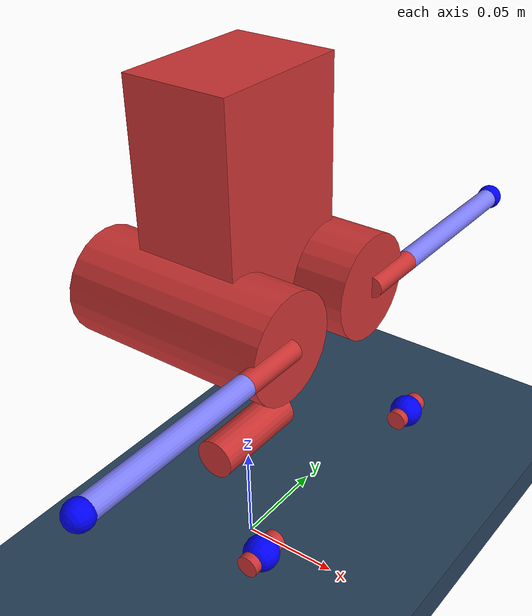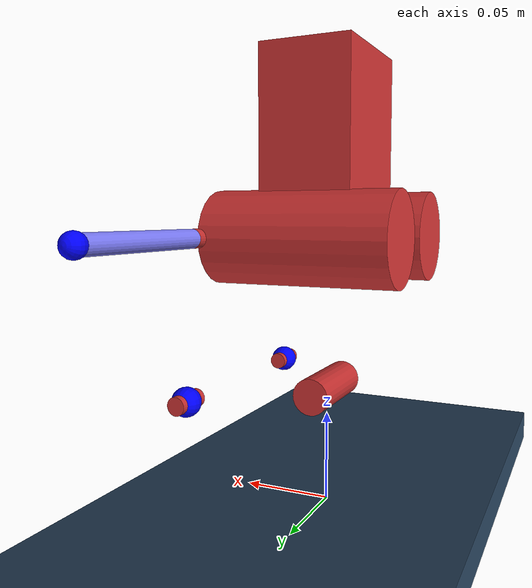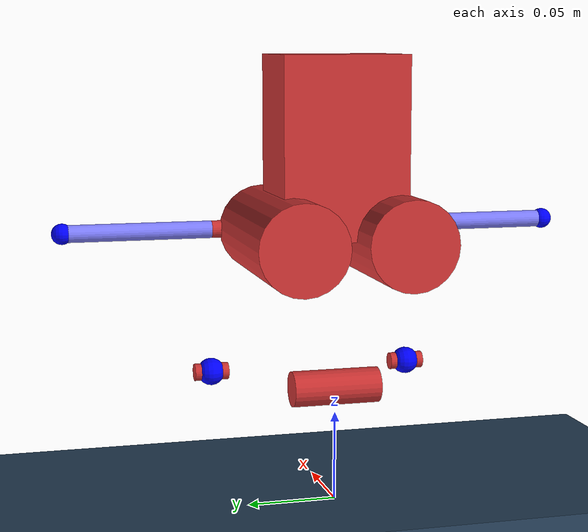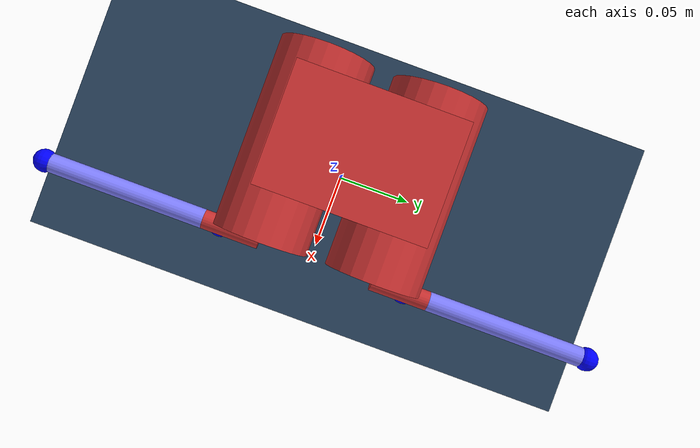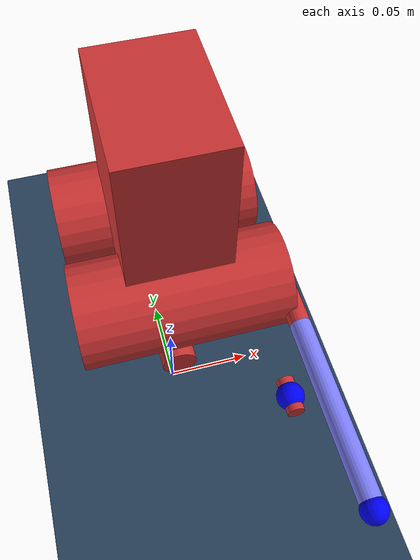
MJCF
<mujoco model="torso_mechanism">

    <compiler meshdir="mesh" />
    <option gravity="0 0 -9.81" timestep="0.0001" integrator="RK4"/>

    <default>
        <!-- stiffer contacts -->
        <geom solref="0.99 1.5" solimp="0.99 0.99 0.99 2 3"/>
        <mesh scale="0.001 0.001 0.001" />
    </default>

    <visual>
        <map force="1" zfar="3"/>
        <rgba haze="0 0 0 1"/>
        <global elevation="-30" azimuth="135"/>
    </visual>

    <asset>
        <texture type="skybox" builtin="gradient" rgb1=".3 .5 .7" rgb2="0 0 0" width="32" height="512"/>
        <texture name="body" type="cube" builtin="flat" mark="cross" width="128" height="128" rgb1="0.8 0.6 0.4" rgb2="0.8 0.6 0.4" markrgb="1 1 1"/>
        <material name="body" texture="body" texuniform="true" rgba="0.8 0.6 .4 1"/>
        <texture name="grid" type="2d" builtin="checker" width="512" height="512" rgb1=".1 .2 .3" rgb2=".2 .3 .4"/>
        <material name="grid" texture="grid" texrepeat="20 20" texuniform="true" reflectance=".5"/>
    </asset>

    <worldbody>
        <geom name="floor" type="box" size="0.5 0.5 0.01" pos="0 0 0" material="grid" condim="3"/>
        <light name="spotlight" diffuse="0.7 0.7 0.7" specular="1 1 1" pos="0 0 1" cutoff="3" castshadow="false"/>
        <light name="top" pos="0 0 2" mode="trackcom" castshadow="false"/>
        <light name="front" pos="0.1 0 0.5" mode="trackcom" />

        <body name="base0" pos="0 0 0">

            <!-- base1 -->
            <body name="base1" euler="90 0 0" pos="0.055 -0.06 0.065">
                <inertial pos="0 0 0" mass="0.001" diaginertia="0.1 0.1 0.1"/>
                <geom name="base1_geom" type="cylinder" size="0.005 0.01" rgba="0.8 0.2 0.2 1"/>
                <joint name="s_spider1" type="hinge" pos="0 0 0" axis="0 0 1" damping="0.2"/>
                <!-- dummy1 -->
                <body name="dummy1" euler="0 0 0" pos="0 0 0">
                    <joint name="s_spider1_1" type="hinge" pos="0 0 0" axis="1 0 0" damping="0.2"/>
                    <geom name="dummy1" type="sphere" size="0.001" rgba="0.8 0.2 0.2 1"/>
                    <inertial pos="0 0 0" mass="0.001" diaginertia="0.1 0.1 0.1"/>
                    <site name="SS1" pos="0 0 0" type="sphere" size="0.008" rgba="0 0 1 1"/>
                </body>
            </body>

            <!-- base2 -->
            <body name="base2" euler="90 0 0" pos="0.055 0.06 0.065">
                <geom name="base2_geom" type="cylinder" size="0.005 0.01" rgba="0.8 0.2 0.2 1"/>
                <joint name="s_spider2" type="hinge" pos="0 0 0" axis="0 0 1" damping="0.2"/>
                <!-- dummy2 -->
                <body name="dummy2" euler="0 0 0" pos="0 0 0">
                    <joint name="s_spider2_1" type="hinge" pos="0 0 0" axis="1 0 0" damping="0.2"/>
                    <geom name="dummy2" type="sphere" size="0.001" rgba="0.8 0.2 0.2 1"/>
                    <inertial pos="0 0 0" mass="0.001" diaginertia="0.1 0.1 0.1"/>
                    <site name="SS2" pos="0 0 0" type="sphere" size="0.008" rgba="0 0 1 1"/>
                </body>
            </body>

            <body name="spider" pos="0 0 0.065" euler="90 0 0">
                <geom type="cylinder" size="0.01 0.025" rgba="0.8 0.2 0.2 1"/>
                <joint name="roll" pos="0 0 0" type="hinge" axis="1 0 0" range="-15 15" damping="0.002"/>

                <body name="torso" pos="0 0.085 0" euler="-90 0 0">
                    <geom type="box" size="0.025 0.035 0.05" pos ="0 0 0.05" rgba="0.8 0.2 0.2 1"/>
                    <joint name="pitch" pos="0 0 -0.085" type="hinge" axis="0 1 0" range="-10 20" damping="0.002"/>

                    <body name="motor18" pos="0 -0.03 0" euler="0 90 0">
                        <geom type="cylinder" size="0.025 0.05" pos ="0 0 0" rgba="0.8 0.2 0.2 1"/>
                        <!-- ul1 & ll1 -->
                        <body name="ul1" euler="90 0 0" pos="0 0 0.05">
                            <geom type="cylinder" size="0.005 0.015" pos="0 0 0.015" rgba="0.8 0.2 0.2 1"/>
                            <joint name="joint18" type="hinge" pos="0 0 0" axis="0 -1 0" damping="0.002"/>
                            <body name="ll1" euler="0 0 0" pos="0 0 0.0725">
                                <geom name="ll1_geom" type="cylinder" size="0.005 0.0425" rgba="0.5 0.5 1 1"/>
                                <joint name="ball1" type="ball" pos="0 0 -0.0425" damping="0.002"/>
                                <site name="c1" pos="0 0 0.0425" type="sphere" size="0.006" rgba="0 0 1 1"/>
                            </body>
                        </body>
                    </body>

                    <body name="motor19" pos="0 0.03 0" euler="0 90 0">
                        <geom type="cylinder" size="0.025 0.05" pos ="0 0 0" rgba="0.8 0.2 0.2 1"/>
                        <!-- ul2 & ll2 -->
                        <body name="ul2" euler="-90 0 0" pos="0 0 0.05">
                            <geom type="cylinder" size="0.005 0.015" pos="0 0 0.015" rgba="0.8 0.2 0.2 1"/>
                            <joint name="joint19" type="hinge" pos="0 0 0" axis="0 1 0" damping="0.002"/>
                            <body name="ll2" euler="0 0 0" pos="0 0 0.0725">
                                <geom name="ll2_geom" type="cylinder" size="0.005 0.0425" rgba="0.5 0.5 1 1"/>
                                <joint name="ball2" type="ball" pos="0 0 -0.0425" damping="0.002"/>
                                <site name="c2" pos="0 0 0.0425" type="sphere" size="0.006" rgba="0 0 1 1"/>
                            </body>
                        </body>
                    </body>
                </body>
            </body>
        </body>
    </worldbody>

    <equality>
        <weld site1="SS1" site2="c1"/>
        <weld site1="SS2" site2="c2"/>
    </equality>

    <actuator>
        <position joint="pitch" ctrlrange="-0.174 0.348"/>
        <position joint="roll" ctrlrange="-0.262 0.262"/>
    </actuator>

    <sensor>
        <jointpos name="joint18_pos" joint="joint18" />
        <jointpos name="joint19_pos" joint="joint19" />
    </sensor>

</mujoco>
